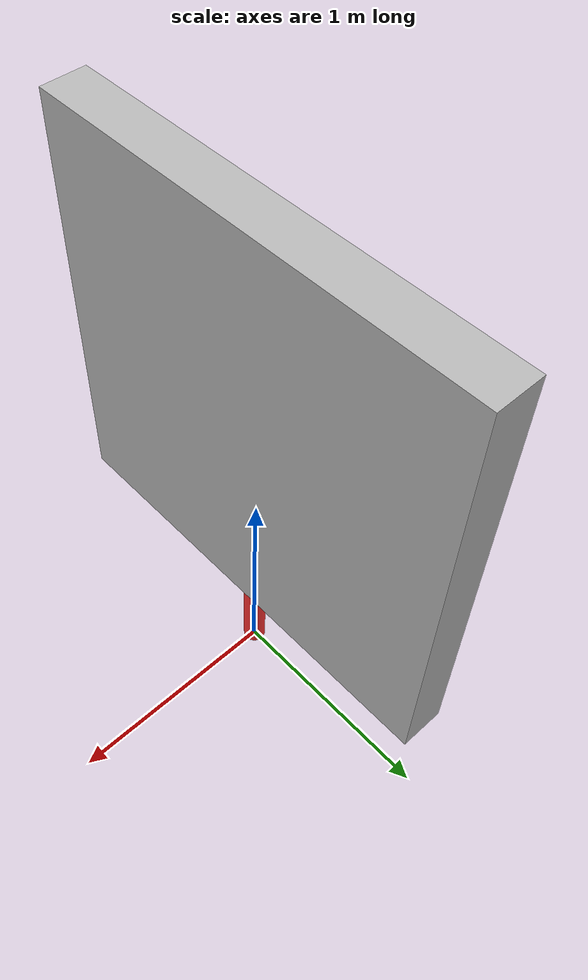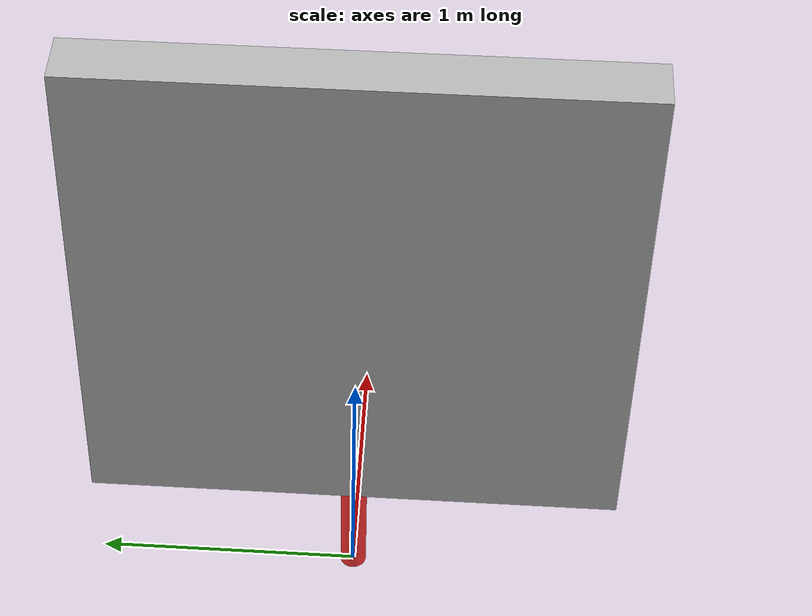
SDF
<?xml version='1.0'?>
<sdf version='1.6'>
  <model name='apriltag_sign'>
    <link name='sign'>
      <pose frame=''>0 0 0.25 0 0 0</pose>
      <visual name="visual">
        <geometry>
          <cylinder>
            <radius>0.05</radius>  <!-- 半径 = 直径 / 2 = 0.1 / 2 = 0.05 -->
            <length>0.5</length>   <!-- 高度 -->
          </cylinder>
        </geometry>
        <!-- 定义颜色为银色 -->
        <material>
          <ambient>1 0.2 0.2 1</ambient>  <!-- 环境光颜色 -->
          <diffuse>1 0.2 0.2 1</diffuse>  <!-- 漫反射颜色 -->
          <specular>0.5 0.5 0.5 1</specular> <!-- 镜面反射颜色 -->
        </material>
      </visual>
     </link>
      <!-- 在圆柱体顶部添加apriltag模型 -->
     <include>
      <uri>model://apriltag</uri>  <!-- 使用 Gazebo 自带的单位模型 -->
      <pose>0 0 1.5 -1.57 0 1.57</pose>   <!-- 将apriltag放置在圆柱体顶部 -->
      <name>apritag</name>        <!-- 模型的名称 -->
    </include>

    <!-- 刚性关节：将 apriltag 模型连接到圆柱体顶部 -->
    <joint name="fixed_joint" type="fixed">
      <parent>sign</parent>  <!-- 父 Link：圆柱体 -->
      <child>apritag::main</child>  <!-- 子 Link：apriltag 的默认 Link -->
      <pose>0 0 1.5 -1.57 0 1.57</pose>  <!-- 关节位置和姿态 -->
    </joint>
    <static>1</static>
  </model>
</sdf>

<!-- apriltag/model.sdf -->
<sdf version='1.6'>
  <model name='apriltag'>
    <link name='main'>
      <pose frame=''>0 0 0 0 0 0</pose>
      <visual name="visual">
        <geometry>
            <mesh>
                <scale>1 1 1</scale>
                <uri>model://apriltag/meshes/AprilTags0.dae</uri>
            </mesh>
        </geometry>
      </visual>
     </link>
    <static>1</static>
  </model>
</sdf>
